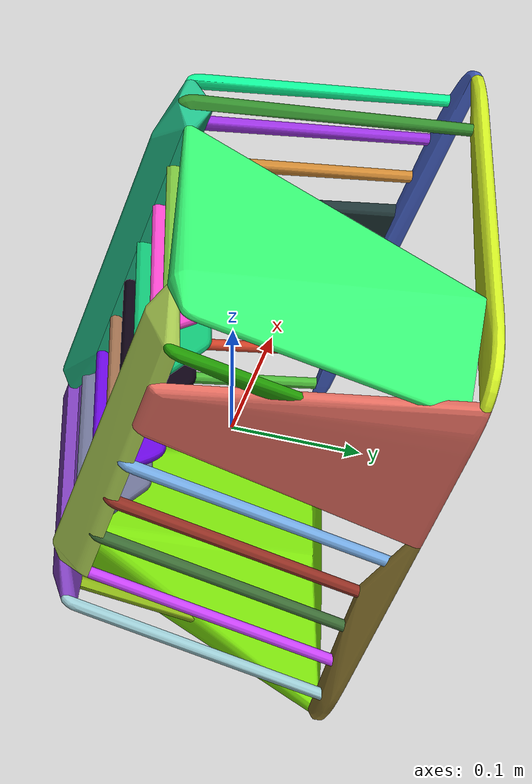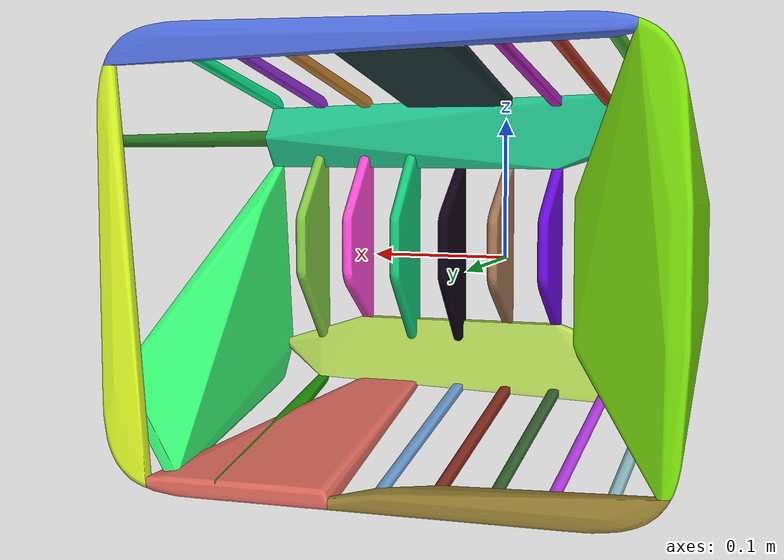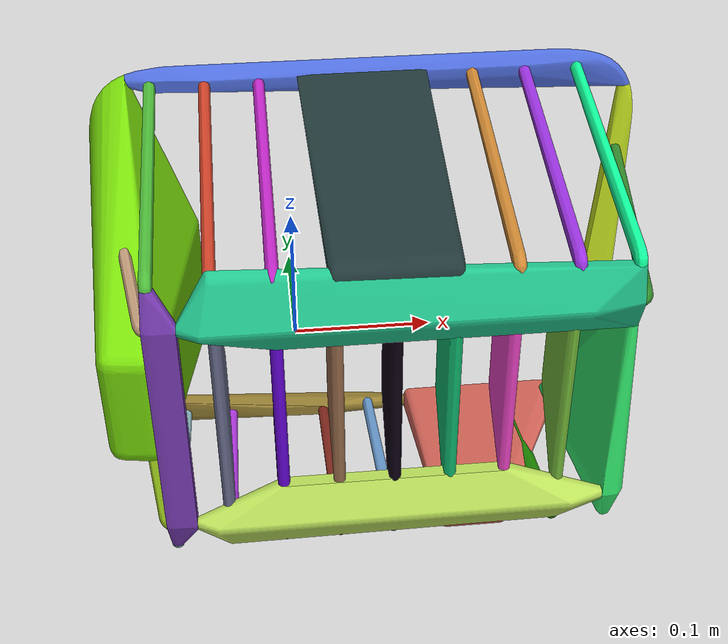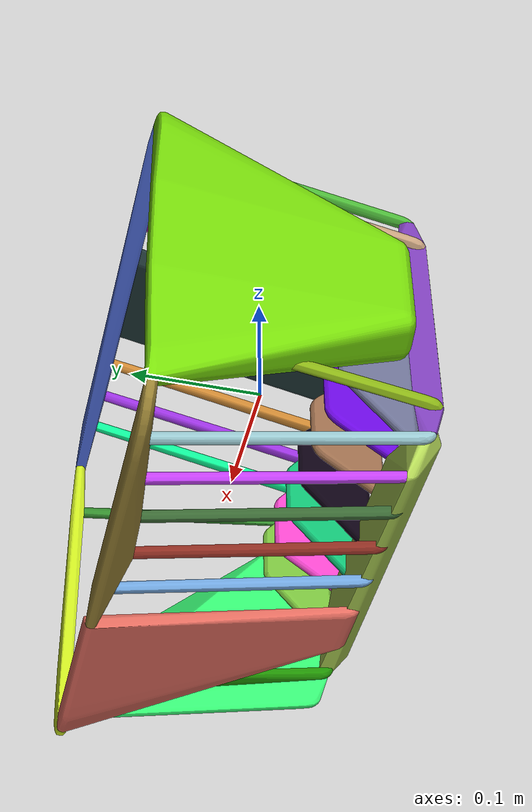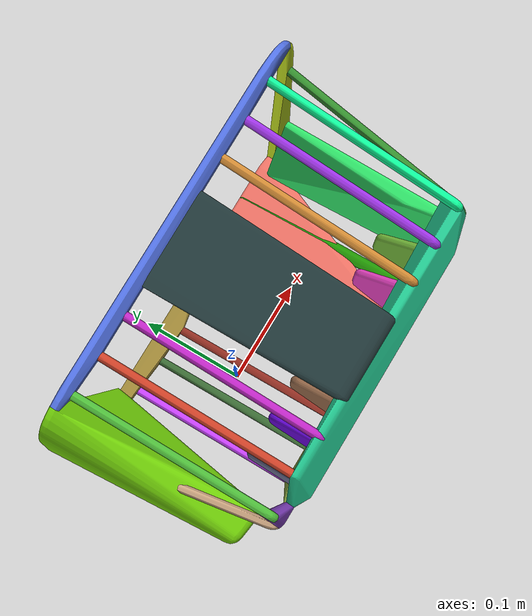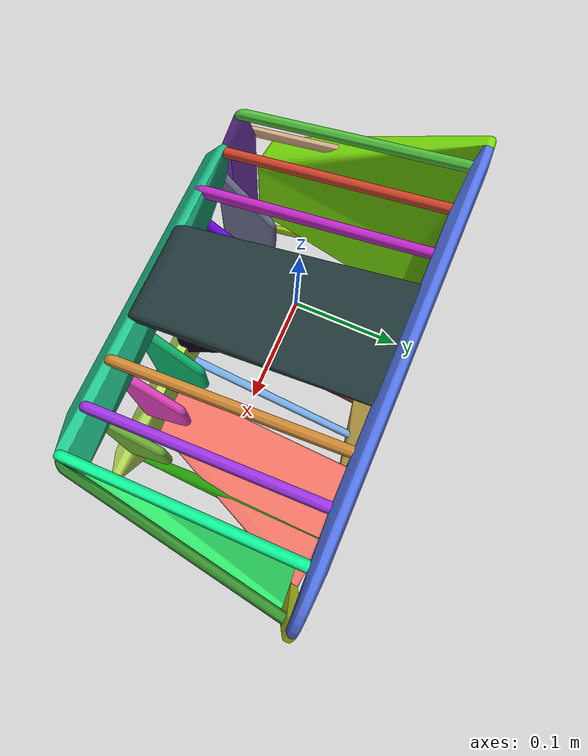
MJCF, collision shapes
<mujoco model="dish_rack">
  <default>
    <default class="visual">
      <geom group="2" type="mesh" contype="0" conaffinity="0"/>
    </default>
    <default class="collision">
      <geom group="3" type="mesh"/>
    </default>
  </default>
  <asset>
    <material name="Material" specular="0.36842099999999994" shininess="0.104654449" rgba="0.698193 0.555022 0.591208 0.973684"/>
    <mesh file="dish_rack.obj"/>
    <mesh file="dish_rack_collision_0.obj"/>
    <mesh file="dish_rack_collision_1.obj"/>
    <mesh file="dish_rack_collision_2.obj"/>
    <mesh file="dish_rack_collision_3.obj"/>
    <mesh file="dish_rack_collision_4.obj"/>
    <mesh file="dish_rack_collision_5.obj"/>
    <mesh file="dish_rack_collision_6.obj"/>
    <mesh file="dish_rack_collision_7.obj"/>
    <mesh file="dish_rack_collision_8.obj"/>
    <mesh file="dish_rack_collision_9.obj"/>
    <mesh file="dish_rack_collision_10.obj"/>
    <mesh file="dish_rack_collision_11.obj"/>
    <mesh file="dish_rack_collision_12.obj"/>
    <mesh file="dish_rack_collision_13.obj"/>
    <mesh file="dish_rack_collision_14.obj"/>
    <mesh file="dish_rack_collision_15.obj"/>
    <mesh file="dish_rack_collision_16.obj"/>
    <mesh file="dish_rack_collision_17.obj"/>
    <mesh file="dish_rack_collision_18.obj"/>
    <mesh file="dish_rack_collision_19.obj"/>
    <mesh file="dish_rack_collision_20.obj"/>
    <mesh file="dish_rack_collision_21.obj"/>
    <mesh file="dish_rack_collision_22.obj"/>
    <mesh file="dish_rack_collision_23.obj"/>
    <mesh file="dish_rack_collision_24.obj"/>
    <mesh file="dish_rack_collision_25.obj"/>
    <mesh file="dish_rack_collision_26.obj"/>
    <mesh file="dish_rack_collision_27.obj"/>
    <mesh file="dish_rack_collision_28.obj"/>
    <mesh file="dish_rack_collision_29.obj"/>
    <mesh file="dish_rack_collision_30.obj"/>
    <mesh file="dish_rack_collision_31.obj"/>
  </asset>
  <worldbody>
    <body name="dish_rack">
      <geom material="Material" mesh="dish_rack" class="visual"/>
      <geom mesh="dish_rack_collision_0" rgba="0.20706451430932815 0.9583855904777651 0.4459291578715656 1" class="collision"/>
      <geom mesh="dish_rack_collision_1" rgba="0.19932527072895223 0.5426561081795495 0.17409993691800807 1" class="collision"/>
      <geom mesh="dish_rack_collision_2" rgba="0.2990452313730071 0.7185395230656241 0.2211559173666262 1" class="collision"/>
      <geom mesh="dish_rack_collision_3" rgba="0.46945392984194334 0.8539591963817036 0.03562711856426104 1" class="collision"/>
      <geom mesh="dish_rack_collision_4" rgba="0.7610642594202582 0.248348149547701 0.9581007968334244 1" class="collision"/>
      <geom mesh="dish_rack_collision_5" rgba="0.8217715365641268 0.939169146091783 0.1358643023378634 1" class="collision"/>
      <geom mesh="dish_rack_collision_6" rgba="0.7852313897375919 0.24831522489032343 0.15127330324155353 1" class="collision"/>
      <geom mesh="dish_rack_collision_7" rgba="0.772216884425005 0.6252714321154248 0.4888551645820315 1" class="collision"/>
      <geom mesh="dish_rack_collision_8" rgba="0.12214872350845551 0.20853683856113236 0.21147889686222165 1" class="collision"/>
      <geom mesh="dish_rack_collision_9" rgba="0.7110382898799885 0.852808995798795 0.34246224578781903 1" class="collision"/>
      <geom mesh="dish_rack_collision_10" rgba="0.5977171916171302 0.5077732034053283 0.20410422259340333 1" class="collision"/>
      <geom mesh="dish_rack_collision_11" rgba="0.31268523855584485 0.43447181195366424 0.871199197534072 1" class="collision"/>
      <geom mesh="dish_rack_collision_12" rgba="0.435261975651105 0.6416323869513711 0.8595354380765745 1" class="collision"/>
      <geom mesh="dish_rack_collision_13" rgba="0.41527177114281977 0.024503545527606474 0.8719212456246114 1" class="collision"/>
      <geom mesh="dish_rack_collision_14" rgba="0.4759483467072436 0.7569265965299988 0.2389020629818528 1" class="collision"/>
      <geom mesh="dish_rack_collision_15" rgba="0.1251339138722427 0.7528810170998708 0.5429299160120357 1" class="collision"/>
      <geom mesh="dish_rack_collision_16" rgba="0.6064813067024415 0.19644679361695805 0.8791313773098401 1" class="collision"/>
      <geom mesh="dish_rack_collision_17" rgba="0.12114816761157743 0.5691867047637071 0.010476931021549118 1" class="collision"/>
      <geom mesh="dish_rack_collision_18" rgba="0.058849844286406716 0.7555402674983757 0.4554440341382153 1" class="collision"/>
      <geom mesh="dish_rack_collision_19" rgba="0.6117959305053271 0.42962676065618477 0.30206244509702396 1" class="collision"/>
      <geom mesh="dish_rack_collision_20" rgba="0.5917754687396718 0.7739998067156229 0.8041741165109452 1" class="collision"/>
      <geom mesh="dish_rack_collision_21" rgba="0.8906787752200922 0.4242861873967282 0.3738408961665066 1" class="collision"/>
      <geom mesh="dish_rack_collision_22" rgba="0.803870956657203 0.5311049061243089 0.19859677385731267 1" class="collision"/>
      <geom mesh="dish_rack_collision_23" rgba="0.7326172503852726 0.14566833835637116 0.7549149497725852 1" class="collision"/>
      <geom mesh="dish_rack_collision_24" rgba="0.48685229308345235 0.24297672753160082 0.7243152349649954 1" class="collision"/>
      <geom mesh="dish_rack_collision_25" rgba="0.05106709358882611 0.9757666108051807 0.594443079358451 1" class="collision"/>
      <geom mesh="dish_rack_collision_26" rgba="0.048627422990143776 0.00535277852961491 0.07322546430154597 1" class="collision"/>
      <geom mesh="dish_rack_collision_27" rgba="0.958105677706051 0.2745527621595045 0.8007071559888459 1" class="collision"/>
      <geom mesh="dish_rack_collision_28" rgba="0.554191666662418 0.1770677814386269 0.1317065149295047 1" class="collision"/>
      <geom mesh="dish_rack_collision_29" rgba="0.4270895680672959 0.4457847256253339 0.580345360665049 1" class="collision"/>
      <geom mesh="dish_rack_collision_30" rgba="0.5393217266326846 0.6997237620391508 0.08438248031776252 1" class="collision"/>
      <geom mesh="dish_rack_collision_31" rgba="0.22530765586535784 0.4073079386775508 0.20081273368593533 1" class="collision"/>
    </body>
  </worldbody>
</mujoco>
